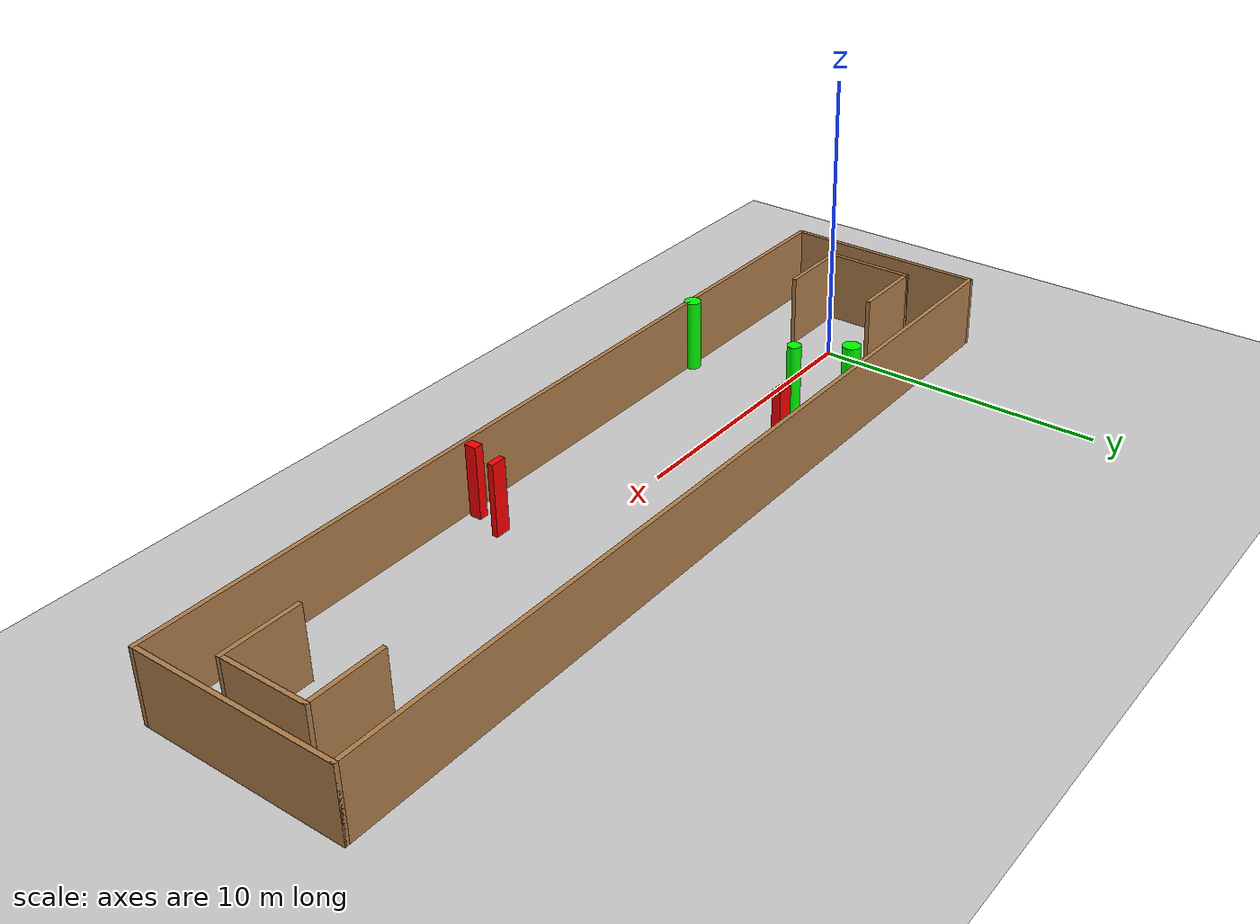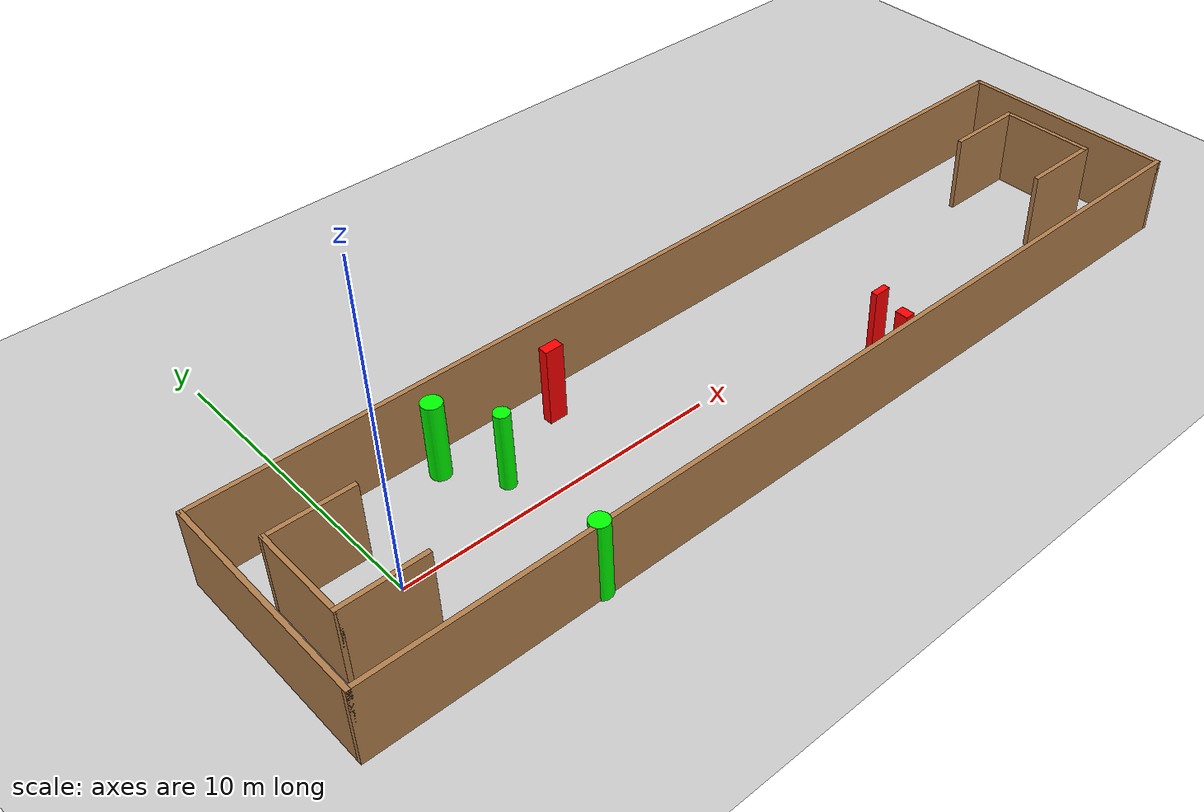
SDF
<sdf version="1.7">
 <world name="default">
  <light name="sun" type="directional">
   <pose>0 0 10 0 -0 0</pose>
   <diffuse>0.8 0.8 0.8 1</diffuse>
   <specular>0.2 0.2 0.2 1</specular>
   <attenuation>
    <range>1000</range>
    <constant>0.9</constant>
    <linear>0.01</linear>
    <quadratic>0.001</quadratic>
   </attenuation>
   <direction>-0.5 0.1 -0.9</direction>
   <spot><inner_angle>0</inner_angle><outer_angle>0</outer_angle><falloff>0</falloff></spot>
  </light>
  <model name="ground_plane">
   <static>1</static>
   <link name="link">
    <collision name="collision">
     <geometry><plane><normal>0 0 1</normal><size>100 100</size></plane></geometry>
     <surface>
      <contact><collide_bitmask>65535</collide_bitmask></contact>
      <friction><ode><mu>100</mu><mu2>50</mu2></ode></friction>
     </surface>
    </collision>
    <visual name="visual">
     <cast_shadows>0</cast_shadows>
     <geometry><plane><normal>0 0 1</normal><size>100 100</size></plane></geometry>
     <material>
      <script><uri>file://media/materials/scripts/gazebo.material</uri><name>Gazebo/Grey</name></script>
     </material>
    </visual>
   </link>
  </model>
  <gravity>0 0 -9.8</gravity>
  <magnetic_field>6e-06 2.3e-05 -4.2e-05</magnetic_field>
  <atmosphere type="adiabatic"/>
  <physics type="ode">
   <max_step_size>0.001</max_step_size>
   <real_time_factor>1</real_time_factor>
   <real_time_update_rate>1000</real_time_update_rate>
  </physics>
  <scene><ambient>0.4 0.4 0.4 1</ambient><background>0.7 0.7 0.7 1</background><shadows>1</shadows></scene>
  <spherical_coordinates>
   <surface_model>EARTH_WGS84</surface_model>
   <latitude_deg>0</latitude_deg>
   <longitude_deg>0</longitude_deg>
   <elevation>0</elevation>
   <heading_deg>0</heading_deg>
  </spherical_coordinates>
  <model name="my_base_walls">
   <link name="Wall_0">
    <collision name="Wall_0_Collision">
     <geometry><box><size>7.15 0.15 2.5</size></box></geometry>
     <pose>0 0 1.25 0 -0 0</pose>
    </collision>
    <visual name="Wall_0_Visual">
     <pose>0 0 1.25 0 -0 0</pose>
     <geometry><box><size>7.15 0.15 2.5</size></box></geometry>
     <material>
      <script><uri>file://media/materials/scripts/gazebo.material</uri><name>Gazebo/Wood</name></script>
      <ambient>1 1 1 1</ambient>
     </material>
     <meta><layer>0</layer></meta>
    </visual>
    <pose>-15 0 0 0 -0 1.5708</pose>
   </link>
   <link name="Wall_10">
    <collision name="Wall_10_Collision">
     <geometry><box><size>2.65 0.15 2.5</size></box></geometry>
     <pose>0 0 1.25 0 -0 0</pose>
    </collision>
    <visual name="Wall_10_Visual">
     <pose>0 0 1.25 0 -0 0</pose>
     <geometry><box><size>2.65 0.15 2.5</size></box></geometry>
     <material>
      <script><uri>file://media/materials/scripts/gazebo.material</uri><name>Gazebo/Wood</name></script>
      <ambient>1 1 1 1</ambient>
     </material>
     <meta><layer>0</layer></meta>
    </visual>
    <pose>-12.75 -1.5 0 0 -0 0</pose>
   </link>
   <link name="Wall_12">
    <collision name="Wall_12_Collision">
     <geometry><box><size>2.65 0.15 2.5</size></box></geometry>
     <pose>0 0 1.25 0 -0 0</pose>
    </collision>
    <visual name="Wall_12_Visual">
     <pose>0 0 1.25 0 -0 0</pose>
     <geometry><box><size>2.65 0.15 2.5</size></box></geometry>
     <material>
      <script><uri>file://media/materials/scripts/gazebo.material</uri><name>Gazebo/Wood</name></script>
      <ambient>1 1 1 1</ambient>
     </material>
     <meta><layer>0</layer></meta>
    </visual>
    <pose>-12.75 1.5 0 0 -0 0</pose>
   </link>
   <link name="Wall_14">
    <collision name="Wall_14_Collision">
     <geometry><box><size>3.15 0.15 2.5</size></box></geometry>
     <pose>0 0 1.25 0 -0 0</pose>
    </collision>
    <visual name="Wall_14_Visual">
     <pose>0 0 1.25 0 -0 0</pose>
     <geometry><box><size>3.15 0.15 2.5</size></box></geometry>
     <material>
      <script><uri>file://media/materials/scripts/gazebo.material</uri><name>Gazebo/Wood</name></script>
      <ambient>1 1 1 1</ambient>
     </material>
     <meta><layer>0</layer></meta>
    </visual>
    <pose>14 0 0 0 -0 -1.5708</pose>
   </link>
   <link name="Wall_15">
    <collision name="Wall_15_Collision">
     <geometry><box><size>2.65 0.15 2.5</size></box></geometry>
     <pose>0 0 1.25 0 -0 0</pose>
    </collision>
    <visual name="Wall_15_Visual">
     <pose>0 0 1.25 0 -0 0</pose>
     <geometry><box><size>2.65 0.15 2.5</size></box></geometry>
     <material>
      <script><uri>file://media/materials/scripts/gazebo.material</uri><name>Gazebo/Wood</name></script>
      <ambient>1 1 1 1</ambient>
     </material>
     <meta><layer>0</layer></meta>
    </visual>
    <pose>12.75 -1.5 0 0 -0 3.14159</pose>
   </link>
   <link name="Wall_17">
    <collision name="Wall_17_Collision">
     <geometry><box><size>2.65 0.15 2.5</size></box></geometry>
     <pose>0 0 1.25 0 -0 0</pose>
    </collision>
    <visual name="Wall_17_Visual">
     <pose>0 0 1.25 0 -0 0</pose>
     <geometry><box><size>2.65 0.15 2.5</size></box></geometry>
     <material>
      <script><uri>file://media/materials/scripts/gazebo.material</uri><name>Gazebo/Wood</name></script>
      <ambient>1 1 1 1</ambient>
     </material>
     <meta><layer>0</layer></meta>
    </visual>
    <pose>12.75 1.5 0 0 -0 3.14159</pose>
   </link>
   <link name="Wall_2">
    <collision name="Wall_2_Collision">
     <geometry><box><size>30.15 0.15 2.5</size></box></geometry>
     <pose>0 0 1.25 0 -0 0</pose>
    </collision>
    <visual name="Wall_2_Visual">
     <pose>0 0 1.25 0 -0 0</pose>
     <geometry><box><size>30.15 0.15 2.5</size></box></geometry>
     <material>
      <script><uri>file://media/materials/scripts/gazebo.material</uri><name>Gazebo/Wood</name></script>
      <ambient>1 1 1 1</ambient>
     </material>
     <meta><layer>0</layer></meta>
    </visual>
    <pose>-0 -3.5 0 0 -0 0</pose>
   </link>
   <link name="Wall_4">
    <collision name="Wall_4_Collision">
     <geometry><box><size>30.15 0.15 2.5</size></box></geometry>
     <pose>0 0 1.25 0 -0 0</pose>
    </collision>
    <visual name="Wall_4_Visual">
     <pose>0 0 1.25 0 -0 0</pose>
     <geometry><box><size>30.15 0.15 2.5</size></box></geometry>
     <material>
      <script><uri>file://media/materials/scripts/gazebo.material</uri><name>Gazebo/Wood</name></script>
      <ambient>1 1 1 1</ambient>
     </material>
     <meta><layer>0</layer></meta>
    </visual>
    <pose>-0 3.5 0 0 -0 0</pose>
   </link>
   <link name="Wall_6">
    <collision name="Wall_6_Collision">
     <geometry><box><size>7.15 0.15 2.5</size></box></geometry>
     <pose>0 0 1.25 0 -0 0</pose>
    </collision>
    <visual name="Wall_6_Visual">
     <pose>0 0 1.25 0 -0 0</pose>
     <geometry><box><size>7.15 0.15 2.5</size></box></geometry>
     <material>
      <script><uri>file://media/materials/scripts/gazebo.material</uri><name>Gazebo/Wood</name></script>
      <ambient>1 1 1 1</ambient>
     </material>
     <meta><layer>0</layer></meta>
    </visual>
    <pose>15 0 0 0 -0 -1.5708</pose>
   </link>
   <link name="Wall_9">
    <collision name="Wall_9_Collision">
     <geometry><box><size>3.15 0.15 2.5</size></box></geometry>
     <pose>0 0 1.25 0 -0 0</pose>
    </collision>
    <visual name="Wall_9_Visual">
     <pose>0 0 1.25 0 -0 0</pose>
     <geometry><box><size>3.15 0.15 2.5</size></box></geometry>
     <material>
      <script><uri>file://media/materials/scripts/gazebo.material</uri><name>Gazebo/Wood</name></script>
      <ambient>1 1 1 1</ambient>
     </material>
     <meta><layer>0</layer></meta>
    </visual>
    <pose>-14 0 0 0 -0 -1.5708</pose>
   </link>
   <static>1</static>
   <pose>11.5 0 0 0 -0 0</pose>
  </model>
  <model name="cylinder1">
   <static>1</static>
   <link name="link">
    <inertial>
     <mass>1</mass>
     <inertia><ixx>0.5</ixx><ixy>0</ixy><ixz>0</ixz><iyy>0.5</iyy><iyz>0</iyz><izz>1</izz></inertia>
    </inertial>
    <collision name="collision">
     <geometry><cylinder><radius>0.23723006750908318</radius><length>2.5</length></cylinder></geometry>
    </collision>
    <visual name="visual">
     <geometry><cylinder><radius>0.23723006750908318</radius><length>2.5</length></cylinder></geometry>
     <material>
      <ambient>0 1 0 1</ambient>
      <diffuse>0 1 0 1</diffuse>
      <specular>0.1 0.1 0.1 1</specular>
      <emissive>0 0 0 0</emissive>
     </material>
    </visual>
   </link>
   <pose>4.149953487772464 1.1510240053490426 1.25 0 0 0</pose>
  </model>
  <model name="cylinder2">
   <static>1</static>
   <link name="link">
    <inertial>
     <mass>1</mass>
     <inertia><ixx>0.5</ixx><ixy>0</ixy><ixz>0</ixz><iyy>0.5</iyy><iyz>0</iyz><izz>1</izz></inertia>
    </inertial>
    <collision name="collision">
     <geometry><cylinder><radius>0.306737336333354</radius><length>2.5</length></cylinder></geometry>
    </collision>
    <visual name="visual">
     <geometry><cylinder><radius>0.306737336333354</radius><length>2.5</length></cylinder></geometry>
     <material>
      <ambient>0 1 0 1</ambient>
      <diffuse>0 1 0 1</diffuse>
      <specular>0.1 0.1 0.1 1</specular>
      <emissive>0 0 0 0</emissive>
     </material>
    </visual>
   </link>
   <pose>3.086887758489951 2.6784056717347653 1.25 0 0 0</pose>
  </model>
  <model name="cylinder3">
   <static>1</static>
   <link name="link">
    <inertial>
     <mass>1</mass>
     <inertia><ixx>0.5</ixx><ixy>0</ixy><ixz>0</ixz><iyy>0.5</iyy><iyz>0</iyz><izz>1</izz></inertia>
    </inertial>
    <collision name="collision">
     <geometry><cylinder><radius>0.2899873343462993</radius><length>2.5</length></cylinder></geometry>
    </collision>
    <visual name="visual">
     <geometry><cylinder><radius>0.2899873343462993</radius><length>2.5</length></cylinder></geometry>
     <material>
      <ambient>0 1 0 1</ambient>
      <diffuse>0 1 0 1</diffuse>
      <specular>0.1 0.1 0.1 1</specular>
      <emissive>0 0 0 0</emissive>
     </material>
    </visual>
   </link>
   <pose>3.5091516640264615 -3.397472160826216 1.25 0 0 0</pose>
  </model>
  <model name="box1">
   <static>1</static>
   <link name="link">
    <inertial>
     <mass>1</mass>
     <inertia><ixx>0.083</ixx><ixy>0</ixy><ixz>0</ixz><iyy>0.083</iyy><iyz>0</iyz><izz>0.083</izz></inertia>
    </inertial>
    <collision name="collision">
     <geometry><box><size>0.5745370169853463 0.31335526409995956 2.5</size></box></geometry>
    </collision>
    <visual name="visual">
     <geometry><box><size>0.5745370169853463 0.31335526409995956 2.5</size></box></geometry>
     <material>
      <ambient>1 0 0 1</ambient>
      <diffuse>1 0 0 1</diffuse>
      <specular>0.1 0.1 0.1 1</specular>
      <emissive>0 0 0 0</emissive>
     </material>
    </visual>
    <sensor name="my_contact" type="contact">
     <contact><collision>box_collision</collision><topic>__default_topic__</topic></contact>
    </sensor>
   </link>
   <pose>6.7381521292507305 2.3577295285959394 1.25 0 0 0</pose>
  </model>
  <model name="box2">
   <static>1</static>
   <link name="link">
    <inertial>
     <mass>1</mass>
     <inertia><ixx>0.083</ixx><ixy>0</ixy><ixz>0</ixz><iyy>0.083</iyy><iyz>0</iyz><izz>0.083</izz></inertia>
    </inertial>
    <collision name="collision">
     <geometry><box><size>0.30755277881842574 0.4134431906391567 2.5</size></box></geometry>
    </collision>
    <visual name="visual">
     <geometry><box><size>0.30755277881842574 0.4134431906391567 2.5</size></box></geometry>
     <material>
      <ambient>1 0 0 1</ambient>
      <diffuse>1 0 0 1</diffuse>
      <specular>0.1 0.1 0.1 1</specular>
      <emissive>0 0 0 0</emissive>
     </material>
    </visual>
    <sensor name="my_contact" type="contact">
     <contact><collision>box_collision</collision><topic>__default_topic__</topic></contact>
    </sensor>
   </link>
   <pose>14.75603448572717 -3.1305020195872113 1.25 0 0 0</pose>
  </model>
  <model name="box3">
   <static>1</static>
   <link name="link">
    <inertial>
     <mass>1</mass>
     <inertia><ixx>0.083</ixx><ixy>0</ixy><ixz>0</ixz><iyy>0.083</iyy><iyz>0</iyz><izz>0.083</izz></inertia>
    </inertial>
    <collision name="collision">
     <geometry><box><size>0.5308643820255498 0.2016727149427011 2.5</size></box></geometry>
    </collision>
    <visual name="visual">
     <geometry><box><size>0.5308643820255498 0.2016727149427011 2.5</size></box></geometry>
     <material>
      <ambient>1 0 0 1</ambient>
      <diffuse>1 0 0 1</diffuse>
      <specular>0.1 0.1 0.1 1</specular>
      <emissive>0 0 0 0</emissive>
     </material>
    </visual>
    <sensor name="my_contact" type="contact">
     <contact><collision>box_collision</collision><topic>__default_topic__</topic></contact>
    </sensor>
   </link>
   <pose>15.043612045655575 -1.9933267641694656 1.25 0 0 0</pose>
  </model>
 </world>
</sdf>
